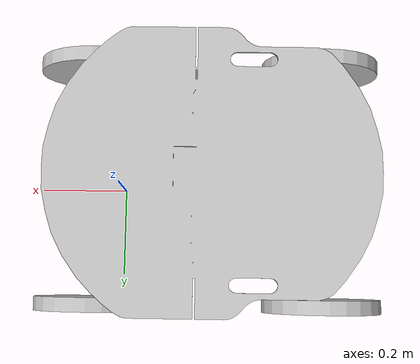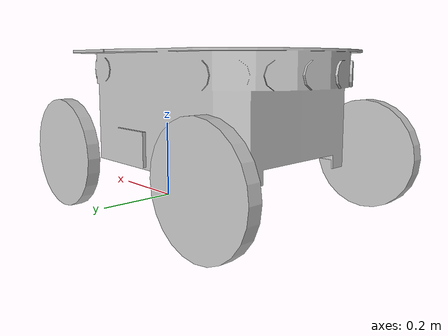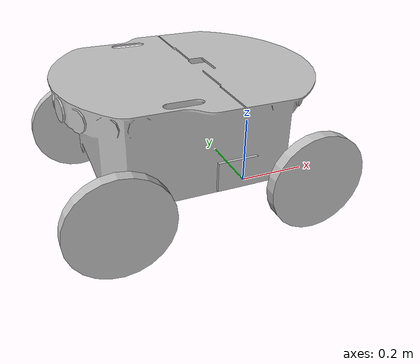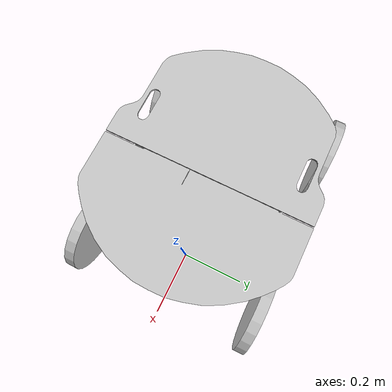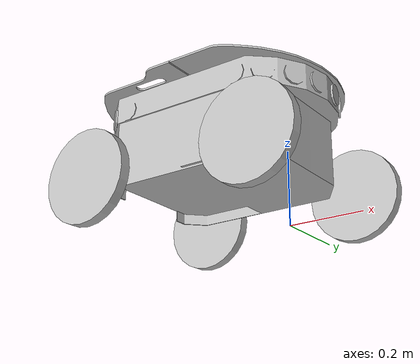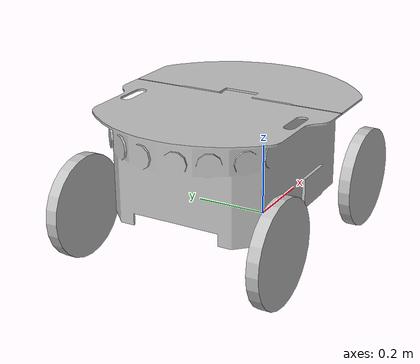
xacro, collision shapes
<?xml version="1.0"?>
<robot xmlns:xacro="http://www.ros.org/wiki/xacro" >

    <material name="white"><color rgba="1 1 1 1" /></material>
    <material name="orange"><color rgba="1 0.3 0.1 1"/></material>
    <material name="blue"><color rgba="0.2 0.2 1 1"/></material>
    <material name="black"> <color rgba="0 0 0 1"/></material>
    <material name="red"> <color rgba="1 0 0 1"/> </material>

  <link name="base_footprint">
  </link>

  <joint name="chasis_joint" type="fixed">
      <parent link="base_footprint"/>
      <child link="chasis"/>
      <origin xyz="0 0 0.3"/>
  </joint>

  <link
    name="chasis">
    <inertial>
      <origin
        xyz="-0.157846867442155 -0.000989052560236107 -0.0680335267976939"
        rpy="0 0 0" />
      <mass
        value="18.1359753389544" />
      <inertia
        ixx="0.127188900061596"
        ixy="0.00127771276303175"
        ixz="0.0155807596218243"
        iyy="0.318764111671866"
        iyz="-1.02262360682995E-05"
        izz="0.329891663157573" />
    </inertial>
    <visual>
      <origin
        xyz="-0.2 0 0"
        rpy="0 0 0" />
      <geometry>
        <mesh filename="file://$(find rat20_movil)/meshes/chasis.stl" >
        </mesh>
      </geometry>
      <material
        name="">
        <color
          rgba="0.752941176470588 0.752941176470588 0.752941176470588 1" />
      </material>
    </visual>
    <collision>
      <origin
        xyz="-0.2 0 0"
        rpy="0 0 0" />
      <geometry>
        <mesh filename="file://$(find rat20_movil)/meshes/chasis.stl" >
        </mesh>
      </geometry>
    </collision>
  </link>
  <link
    name="rueda1">
    <inertial>
      <origin
        xyz="-1.4065E-06 0.10103 -1.5434E-06"
        rpy="0 0 0" />
      <mass
        value="2.2464" />
      <inertia
        ixx="0.0080454"
        ixy="-1.5261E-07"
        ixz="4.5373E-08"
        iyy="0.011889"
        iyz="1.2493E-07"
        izz="0.0080452" />
    </inertial>
    <visual>
      <origin
        xyz="0 0 0"
        rpy="0 0 0" />
      <geometry>
        <mesh
          filename="file://$(find rat20_movil)/meshes/rueda1.STL" />
      </geometry>
      <material
        name="">
        <color
          rgba="0.75294 0.75294 0.75294 1" />
      </material>
    </visual>
    <collision>

      <origin
        xyz="0 0.1 0"
        rpy="1.57 0 0" />
      <geometry>
        <cylinder length="0.03" radius="0.13"/>
      </geometry>
    </collision>
  </link>
  <joint
    name="eje1"
    type="continuous">
    <origin
      xyz="0.054 0.1651 -0.1548"
      rpy="0 0 0" />
    <parent
      link="chasis" />
    <child
      link="rueda1" />
    <axis
      xyz="0 1 0" />
    <dynamics damping="10" friction="10" />
  </joint>
  <link
    name="rueda2">
    <inertial>
      <origin
        xyz="7.4926E-07 -0.10103 -2.017E-06"
        rpy="0 0 0" />
      <mass
        value="2.2464" />
      <inertia
        ixx="0.0080453"
        ixy="-1.8789E-07"
        ixz="-8.2136E-08"
        iyy="0.011889"
        iyz="-6.6037E-08"
        izz="0.0080453" />
    </inertial>
    <visual>
      <origin
        xyz="0 0 0"
        rpy="0 0 0" />
      <geometry>
        <mesh
          filename="file://$(find rat20_movil)/meshes/rueda2.STL" />
      </geometry>
      <material
        name="">
        <color
          rgba="0.75294 0.75294 0.75294 1" />
      </material>
    </visual>
    <collision>

      <origin
        xyz="0 -0.1 0"
        rpy="1.57 0 0" />
      <geometry>
        <cylinder length="0.03" radius="0.13"/>
      </geometry>
    </collision>
  </link>
  <joint
    name="eje2"
    type="continuous">
    <origin
      xyz="0.054 -0.1651 -0.1548"
      rpy="0 0 0" />
    <parent
      link="chasis" />
    <child
      link="rueda2" />
    <axis
      xyz="0 1 0" />
    <dynamics damping="10" friction="10" />
  </joint>
  <link
    name="rueda3">
    <inertial>
      <origin
        xyz="-8.361E-07 0.10103 -1.9199E-06"
        rpy="0 0 0" />
      <mass
        value="2.2464" />
      <inertia
        ixx="0.0080453"
        ixy="-1.8473E-07"
        ixz="7.9936E-08"
        iyy="0.011889"
        iyz="6.965E-08"
        izz="0.0080453" />
    </inertial>
    <visual>
      <origin
        xyz="0 0 0"
        rpy="0 0 0" />
      <geometry>
        <mesh
          filename="file://$(find rat20_movil)/meshes/rueda3.STL" />
      </geometry>
      <material
        name="">
        <color
          rgba="0.75294 0.75294 0.75294 1" />
      </material>
    </visual>
    <collision>

      <origin
        xyz="0 0.1 0"
        rpy="1.57 0 0" />
      <geometry>
        <cylinder length="0.03" radius="0.13"/>
      </geometry>

    </collision>
  </link>
  <joint
    name="eje3"
    type="continuous">
    <origin
      xyz="-0.446 0.1651 -0.1548"
      rpy="0 0 0" />
    <parent
      link="chasis" />
    <child
      link="rueda3" />
    <axis
      xyz="0 1 0" />
    <dynamics damping="10" friction="10" />
  </joint>
  <link
    name="rueda4">
    <inertial>
      <origin
        xyz="1.2559E-06 -0.10103 -1.7119E-06"
        rpy="0 0 0" />
      <mass
        value="2.2464" />
      <inertia
        ixx="0.0080454"
        ixy="-1.6361E-07"
        ixz="-5.8531E-08"
        iyy="0.011889"
        iyz="-1.1205E-07"
        izz="0.0080453" />
    </inertial>
    <visual>
      <origin
        xyz="0 0 0"
        rpy="0 0 0" />
      <geometry>
        <mesh
          filename="file://$(find rat20_movil)/meshes/rueda4.STL" />
      </geometry>
      <material
        name="">
        <color
          rgba="0.75294 0.75294 0.75294 1" />
      </material>
    </visual>
    <collision>

      <origin
        xyz="0 -0.1 0"
        rpy="1.57 0 0" />
      <geometry>
        <cylinder length="0.03" radius="0.13"/>
      </geometry>
    </collision>
  </link>
  <joint
    name="eje4"
    type="continuous">
    <origin
      xyz="-0.446 -0.1651 -0.155"
      rpy="0 0 0" />
    <parent
      link="chasis" />
    <child
      link="rueda4" />
    <axis
      xyz="0 1 0" />
    <dynamics damping="10" friction="10" />
  </joint>

<!-- FIN INCLUIDO DIRECTO DEL URDF -->

<!-- CONFIGURACIONES ADICIONALES  -->

    <gazebo reference="chasis">
        <material>Gazebo/Grey </material>
    </gazebo>

    <gazebo reference="rueda1">
        <kp value= "1000000.0" />
        <kd value="100.0" />
        <maxVel value= "1.0" />
        <minDepth value= "0.00" />
        <mu1 value="1.0"/>
        <mu2 value="1.0"/>
    </gazebo>

    <gazebo reference="rueda2">
        <kp value= "1000000.0" />
        <kd value="100.0" />
        <maxVel value= "1.0" />
        <minDepth value= "0.00" />
        <mu1 value="1.0"/>
        <mu2 value="1.0"/>
    </gazebo>

    <gazebo reference="rueda3">
        <kp value= "1000000.0" />
        <kd value="100.0" />
        <maxVel value= "1.0" />
        <minDepth value= "0.00" />
        <mu1 value="1.0"/>
        <mu2 value="1.0"/>
    </gazebo>

    <gazebo reference="rueda4">
        <kp value= "1000000.0" />
        <kd value="100.0" />
        <maxVel value= "1.0" />
        <minDepth value= "0.00" />
        <mu1 value="1.0"/>
        <mu2 value="1.0"/>
    </gazebo>

</robot>
